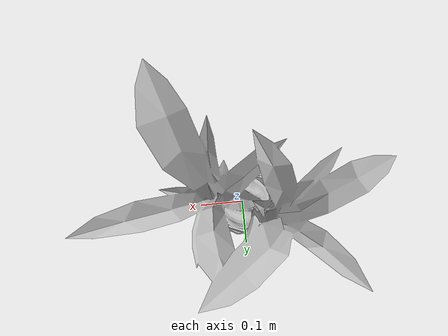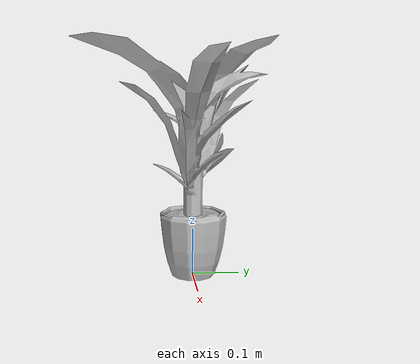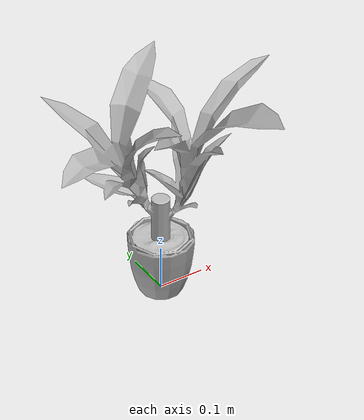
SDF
<?xml version='1.0' ?>
<sdf version='1.6'>
  <model name='small_plant'>
    <static>false</static>
    <link name='link'>
      <collision name='collision'>
        <geometry>
          <mesh>
            <uri>model://volta_simulation/models/small_plant/meshes/small_plant.dae</uri>
          </mesh>
        </geometry>
        <surface>
          <friction>
            <ode>
              <mu>100</mu>
              <mu2>50</mu2>
            </ode>
          </friction>
        </surface>
      </collision>
      <visual name='visual'>
        <geometry>
          <mesh>
            <uri>model://volta_simulation/models/small_plant/meshes/small_plant.dae</uri>
          </mesh>
        </geometry>
        <material>
          <script>
            <uri>model://volta_simulation/models/small_plant/materials/scripts</uri>
            <uri>model://volta_simulation/models/small_plant/materials/textures</uri>
            <name>small_plant</name>
          </script>
        </material>
      </visual>
      <inertial>
        <pose>0 0 0.12 0 0 0</pose>
        <mass>4</mass>
        <inertia>
          <ixx>0.13 </ixx>
          <iyy>0.13 </iyy>
          <izz>0.03</izz>
          <ixy>0</ixy>
          <ixz>0 </ixz>
          <iyz>0</iyz>
        </inertia>
      </inertial>
    </link>
  </model>
</sdf>
